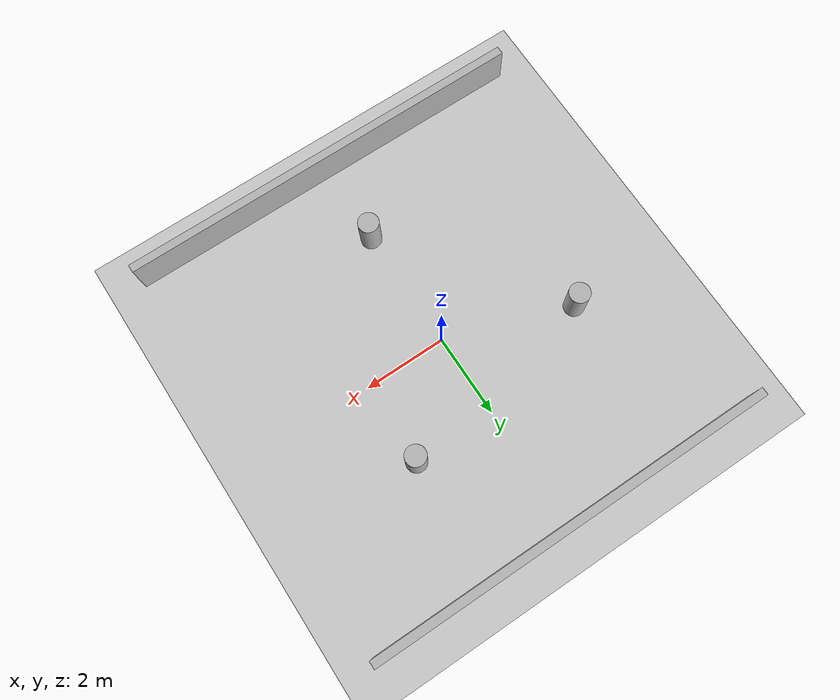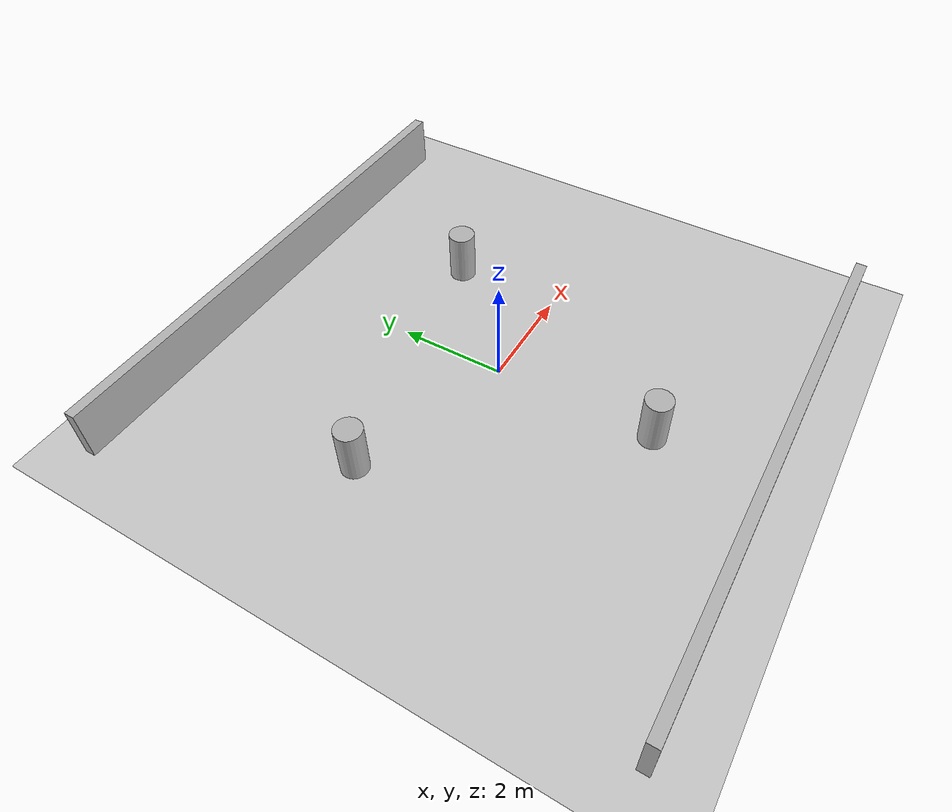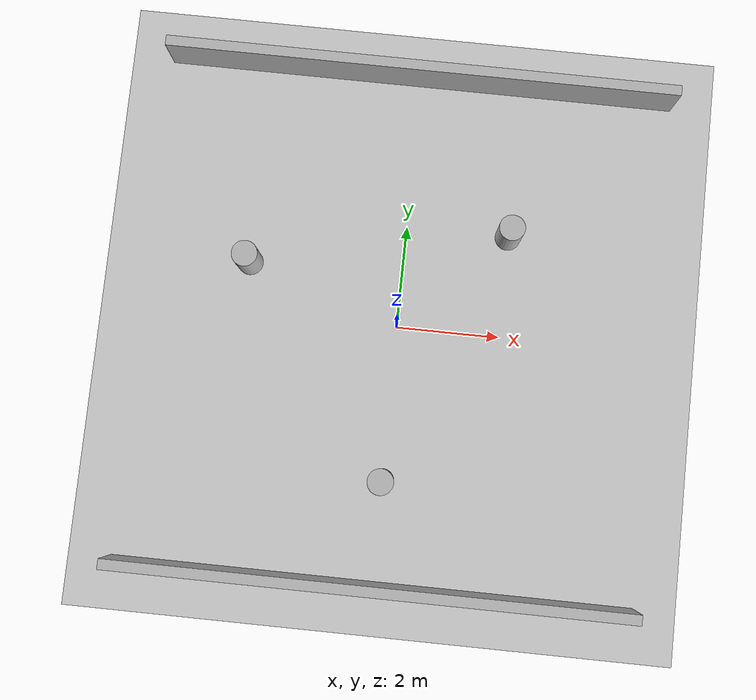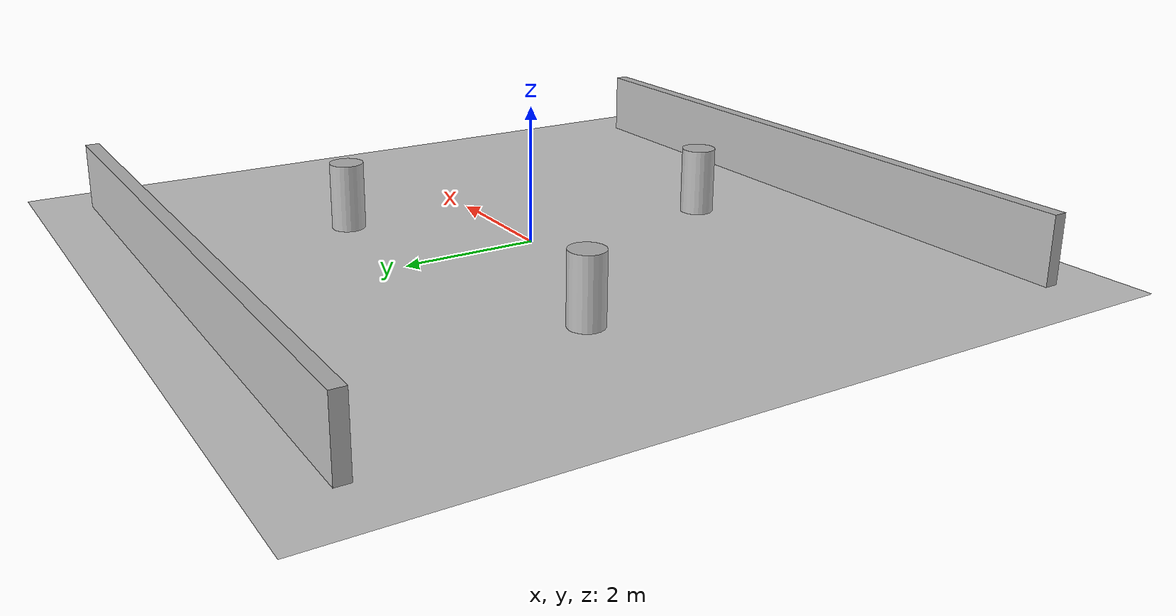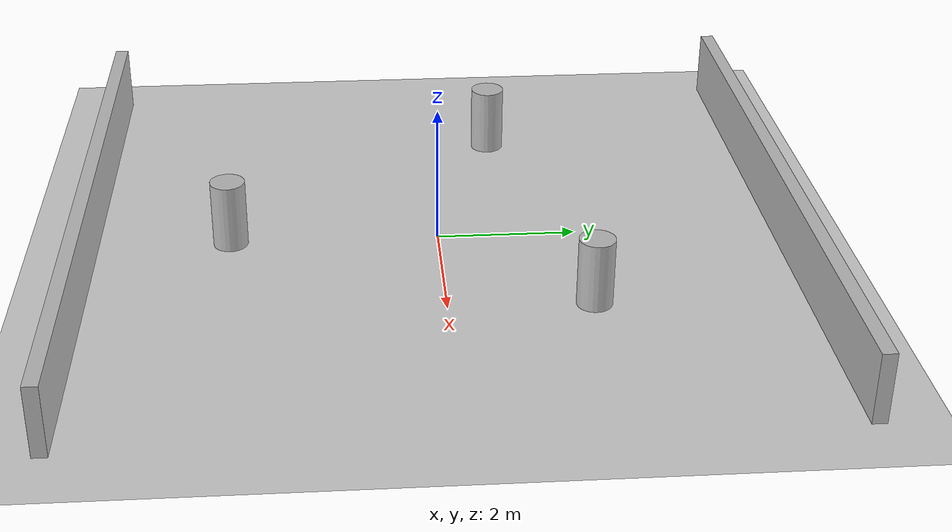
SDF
<?xml version="1.0" ?>
<sdf version="1.8">
  <world name="challenge_arena">
    <plugin filename="gz-sim-physics-system" name="gz::sim::systems::Physics"></plugin>
    <plugin filename="gz-sim-scene-broadcaster-system" name="gz::sim::systems::SceneBroadcaster"></plugin>

    <light type="directional" name="sun">
      <cast_shadows>true</cast_shadows>
      <pose>0 0 10 0 0 0</pose>
      <diffuse>0.8 0.8 0.8 1</diffuse>
    </light>

    <model name="ground_plane">
      <static>
        true
      </static>
      <link name="link">
        <collision name="collision">
          <geometry>
              <plane>
                <normal>
                  0 0 1
                </normal>
                <size>
                  10 10
                </size>
              </plane>
          </geometry>
        </collision>
        <visual name="visual">
          <geometry>
            <plane>
              <normal>
                0 0 1
              </normal>
              <size>
                10 10
              </size>
            </plane>
          </geometry>
          <material>
            <ambient>
              0.8 0.8 0.8 1
            </ambient>
          </material>
        </visual>
      </link>
    </model>

    <model name="wall_top">
      <static>
        true
      </static>
      <pose>
        0 5 0.5 0 0 0
      </pose>
      <link name="link">
        <collision name="collision">
          <geometry>
            <box>
              <size>
                10 0.2 1
              </size>
            </box>
          </geometry>
        </collision>
        <visual name="visual">
          <geometry>
            <box>
              <size>
                10 0.2 1
              </size>
            </box>
          </geometry>
        </visual>
      </link>
    </model>

    <model name="wall_bottom">
      <static>
        true
      </static>
      <pose>0 -5 0.5 0 0 0</pose>
      <link name="link">
        <collision name="collision">
          <geometry>
            <box>
              <size>
                10 0.2 1
              </size>
            </box>
          </geometry>
        </collision>
        <visual name="visual">
          <geometry>
            <box>
              <size>
                10 0.2 1
              </size>
            </box>
          </geometry>
        </visual>
      </link>
    </model>

    <model name="obstacle_1">
      <static>
        true
      </static>
      <pose>2 2 0.5 0 0 0</pose> <link name="link">
        <collision name="collision">
          <geometry>
            <cylinder>
              <radius>0.25</radius>
              <length>1.0</length>
            </cylinder>
          </geometry>
        </collision>
        <visual name="visual">
          <geometry>
            <cylinder>
              <radius>0.25</radius>
              <length>1.0</length>
            </cylinder>
          </geometry>
        </visual>
      </link>
    </model>

    <model name="obstacle_2">
      <static>
        true
      </static>
      <pose>-3 1 0.5 0 0 0</pose>
      <link name="link">
        <collision name="collision">
          <geometry>
            <cylinder>
              <radius>0.25</radius>
              <length>1.0</length>
            </cylinder>
          </geometry>
        </collision>
        <visual name="visual">
          <geometry>
            <cylinder>
              <radius>0.25</radius>
              <length>1.0</length>
            </cylinder>
          </geometry>
        </visual>
      </link>
    </model>

    <model name="obstacle_3">
      <static>
        true
      </static>
      <pose>0 -3 0.5 0 0 0</pose>
      <link name="link">
        <collision name="collision">
          <geometry>
            <cylinder>
              <radius>0.25</radius>
              <length>1.0</length>
            </cylinder>
          </geometry>
        </collision>
        <visual name="visual">
          <geometry>
            <cylinder>
              <radius>0.25</radius>
              <length>1.0</length>
            </cylinder>
          </geometry>
        </visual>
      </link>
    </model>

  </world>
</sdf>
